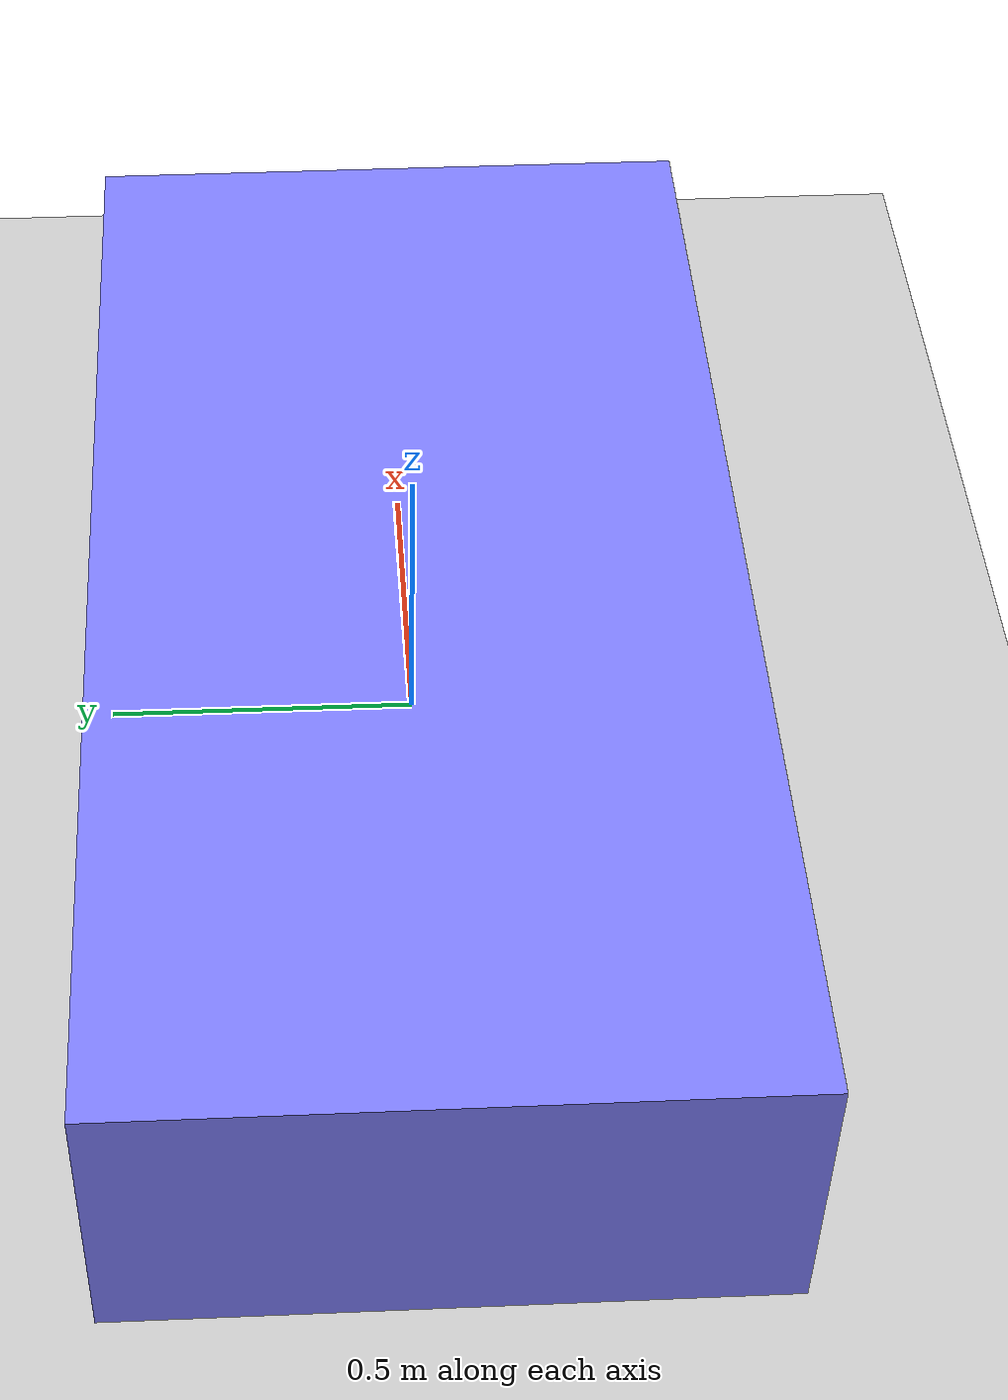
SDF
<?xml version="1.0" ?>
<sdf version='1.10'>
  <world name='empty'>
    <physics name='1ms' type='ignored'>
      <max_step_size>0.0050000000000000001</max_step_size>
      <real_time_factor>1</real_time_factor>
      <real_time_update_rate>500</real_time_update_rate>
    </physics>
    <plugin name='gz::sim::systems::Physics' filename='gz-sim-physics-system'/>
    <plugin name='gz::sim::systems::UserCommands' filename='gz-sim-user-commands-system'/>
    <plugin name='gz::sim::systems::SceneBroadcaster' filename='gz-sim-scene-broadcaster-system'/>
    <plugin name='gz::sim::systems::Contact' filename='gz-sim-contact-system'/>
    <gravity>0 0 -9.8000000000000007</gravity>
    <magnetic_field>5.5644999999999998e-06 2.2875799999999999e-05 -4.2388400000000002e-05</magnetic_field>
    <atmosphere type='adiabatic'/>
    <scene>
      <ambient>0.400000006 0.400000006 0.400000006 1</ambient>
      <background>0.699999988 0.699999988 0.699999988 1</background>
      <shadows>true</shadows>
    </scene>
    <gui>
      <camera name='user_camera'>
        <pose>0 0 10 0 -1.5700000000004057 0</pose>
      </camera>
    </gui>

    <model name='ground_plan'>
      <static>true</static>
      <link name='link'>
        <collision name='collision'>
          <geometry>
            <plane>
              <normal>0 0 1</normal>
              <size>100 100</size>
            </plane>
          </geometry>
          <surface>
            <friction>
              <ode/>
            </friction>
            <bounce/>
            <contact/>
          </surface>
        </collision>
        <visual name='visual'>
          <geometry>
            <plane>
              <normal>0 0 1</normal>
              <size>100 100</size>
            </plane>
          </geometry>
          <material>
            <ambient>0.800000012 0.800000012 0.800000012 1</ambient>
            <diffuse>0.800000012 0.800000012 0.800000012 1</diffuse>
            <specular>0.800000012 0.800000012 0.800000012 1</specular>
          </material>
        </visual>
        <pose>0 0 0 0 0 0</pose>
        <inertial>
          <pose>0 0 0 0 0 0</pose>
          <mass>1</mass>
          <inertia>
            <ixx>1</ixx>
            <ixy>0</ixy>
            <ixz>0</ixz>
            <iyy>1</iyy>
            <iyz>0</iyz>
            <izz>1</izz>
          </inertia>
        </inertial>
        <enable_wind>false</enable_wind>
      </link>
      <pose>0 0 0 0 0 0</pose>
      <self_collide>false</self_collide>
    </model>

    <include>
      <uri>package://tf2_basic/models/vehicle_test</uri>
      <name>vehicle_test</name>
      <pose>0 0 0.02 0 0 0</pose>
    </include>

    <light name='sun' type='directional'>
      <pose>0 0 10 0 0 0</pose>
      <cast_shadows>true</cast_shadows>
      <intensity>1</intensity>
      <direction>-0.5 0.10000000000000001 -0.90000000000000002</direction>
      <diffuse>0.800000012 0.800000012 0.800000012 1</diffuse>
      <specular>0.200000003 0.200000003 0.200000003 1</specular>
      <attenuation>
        <range>1000</range>
        <linear>0.0099999997764825821</linear>
        <constant>0.89999997615814209</constant>
        <quadratic>0.0010000000474974513</quadratic>
      </attenuation>
      <spot>
        <inner_angle>0</inner_angle>
        <outer_angle>0</outer_angle>
        <falloff>0</falloff>
      </spot>
    </light>
  </world>
</sdf>

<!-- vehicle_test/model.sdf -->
<sdf version='1.10'>
  <model name='vehicle_test'>
    <link name="chassis">
        <pose>-0.151427 -0 0.175 0 -0 0</pose>
        <inertial>
            <mass>1.14395</mass>
            <inertia>
                <ixx>0.126164</ixx>
                <ixy>0</ixy>
                <ixz>0</ixz>
                <iyy>0.416519</iyy>
                <iyz>0</iyz>
                <izz>0.481014</izz>
            </inertia>
        </inertial>
        <visual name="visual_chassis">
            <geometry>
                <box>
                <size>2.01142 1 0.568726</size>
                </box>
            </geometry>
            <material>
                <ambient>0.5 0.5 1.0 1</ambient>
                <diffuse>0.5 0.5 1.0 1</diffuse>
                <specular>0.0 0.0 1.0 1</specular>
            </material>
        </visual>
        <collision name="collision_chassis">
            <geometry>
                <box>
                <size>2.01142 1 0.568726</size>
                </box>
            </geometry>
        </collision>
    </link>
  </model>
</sdf>
